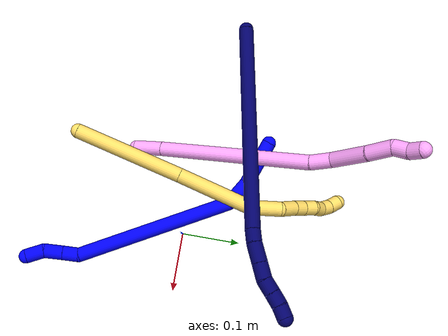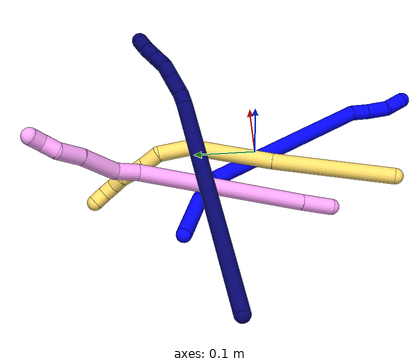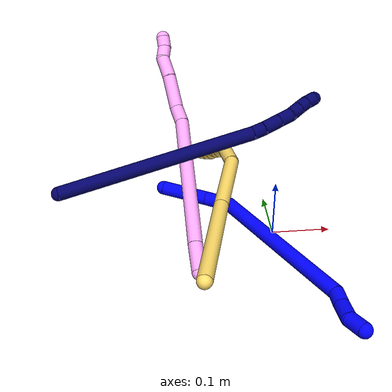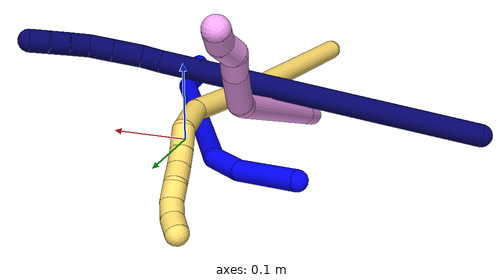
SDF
<sdf version="1.7">
 <world name="default">
  <model name="1">
   <static>0</static>
   <link name="1">
    <collision name="collision-cylinder-e_1_1_4">
     <pose>-0.023151 -0.032304 0.009598 1.28199 -0.601932 -0.455141</pose>
     <geometry><cylinder><radius>0.0125</radius><length>0.08177</length></cylinder></geometry>
     <surface>
      <friction><ode><mu>1.16</mu><mu2>1.16</mu2><slip1>0</slip1><slip2>0</slip2></ode></friction>
      <contact><ode><kp>1e+06</kp><kd>1</kd><max_vel>0</max_vel><min_depth>0.001</min_depth></ode></contact>
     </surface>
    </collision>
    <visual name="visual-cylinder-e_1_1_4">
     <pose>-0.023151 -0.032304 0.009598 1.28199 -0.601932 -0.455141</pose>
     <geometry><cylinder><radius>0.0125</radius><length>0.08177</length></cylinder></geometry>
     <material><ambient>0 0 1 1</ambient></material>
    </visual>
    <collision name="collision-cylinder-e_2_4_5">
     <pose>-0.054842 -0.085975 0.023055 1.3921 -0.374749 -0.314231</pose>
     <geometry><cylinder><radius>0.0125</radius><length>0.046667</length></cylinder></geometry>
     <surface>
      <friction><ode><mu>1.16</mu><mu2>1.16</mu2><slip1>0</slip1><slip2>0</slip2></ode></friction>
      <contact><ode><kp>1e+06</kp><kd>1</kd><max_vel>0</max_vel><min_depth>0.001</min_depth></ode></contact>
     </surface>
    </collision>
    <visual name="visual-cylinder-e_2_4_5">
     <pose>-0.054842 -0.085975 0.023055 1.3921 -0.374749 -0.314231</pose>
     <geometry><cylinder><radius>0.0125</radius><length>0.046667</length></cylinder></geometry>
     <material><ambient>0 0 1 1</ambient></material>
    </visual>
    <collision name="collision-cylinder-e_3_5_6">
     <pose>-0.045287 -0.239347 0.068467 1.26584 0.130026 0.095449</pose>
     <geometry><cylinder><radius>0.0125</radius><length>0.279134</length></cylinder></geometry>
     <surface>
      <friction><ode><mu>1.16</mu><mu2>1.16</mu2><slip1>0</slip1><slip2>0</slip2></ode></friction>
      <contact><ode><kp>1e+06</kp><kd>1</kd><max_vel>0</max_vel><min_depth>0.001</min_depth></ode></contact>
     </surface>
    </collision>
    <visual name="visual-cylinder-e_3_5_6">
     <pose>-0.045287 -0.239347 0.068467 1.26584 0.130026 0.095449</pose>
     <geometry><cylinder><radius>0.0125</radius><length>0.279134</length></cylinder></geometry>
     <material><ambient>0 0 1 1</ambient></material>
    </visual>
    <collision name="collision-cylinder-e_4_6_7">
     <pose>-0.019463 -0.382141 0.114496 1.17749 0.584415 0.396462</pose>
     <geometry><cylinder><radius>0.0125</radius><length>0.028013</length></cylinder></geometry>
     <surface>
      <friction><ode><mu>1.16</mu><mu2>1.16</mu2><slip1>0</slip1><slip2>0</slip2></ode></friction>
      <contact><ode><kp>1e+06</kp><kd>1</kd><max_vel>0</max_vel><min_depth>0.001</min_depth></ode></contact>
     </surface>
    </collision>
    <visual name="visual-cylinder-e_4_6_7">
     <pose>-0.019463 -0.382141 0.114496 1.17749 0.584415 0.396462</pose>
     <geometry><cylinder><radius>0.0125</radius><length>0.028013</length></cylinder></geometry>
     <material><ambient>0 0 1 1</ambient></material>
    </visual>
    <collision name="collision-cylinder-e_5_7_8">
     <pose>-0.002573 -0.406046 0.122615 1.29996 0.592479 0.455975</pose>
     <geometry><cylinder><radius>0.0125</radius><length>0.032815</length></cylinder></geometry>
     <surface>
      <friction><ode><mu>1.16</mu><mu2>1.16</mu2><slip1>0</slip1><slip2>0</slip2></ode></friction>
      <contact><ode><kp>1e+06</kp><kd>1</kd><max_vel>0</max_vel><min_depth>0.001</min_depth></ode></contact>
     </surface>
    </collision>
    <visual name="visual-cylinder-e_5_7_8">
     <pose>-0.002573 -0.406046 0.122615 1.29996 0.592479 0.455975</pose>
     <geometry><cylinder><radius>0.0125</radius><length>0.032815</length></cylinder></geometry>
     <material><ambient>0 0 1 1</ambient></material>
    </visual>
    <collision name="collision-cylinder-e_6_8_2">
     <pose>0.00938 -0.434434 0.129185 1.38135 0.177514 0.146833</pose>
     <geometry><cylinder><radius>0.0125</radius><length>0.0316</length></cylinder></geometry>
     <surface>
      <friction><ode><mu>1.16</mu><mu2>1.16</mu2><slip1>0</slip1><slip2>0</slip2></ode></friction>
      <contact><ode><kp>1e+06</kp><kd>1</kd><max_vel>0</max_vel><min_depth>0.001</min_depth></ode></contact>
     </surface>
    </collision>
    <visual name="visual-cylinder-e_6_8_2">
     <pose>0.00938 -0.434434 0.129185 1.38135 0.177514 0.146833</pose>
     <geometry><cylinder><radius>0.0125</radius><length>0.0316</length></cylinder></geometry>
     <material><ambient>0 0 1 1</ambient></material>
    </visual>
    <collision name="collision-sphere-2">
     <pose>0.01217 -0.449708 0.132113 0 -0 0</pose>
     <geometry><sphere><radius>0.0125</radius></sphere></geometry>
     <surface>
      <friction><ode><mu>1.16</mu><mu2>1.16</mu2><slip1>0</slip1><slip2>0</slip2></ode></friction>
      <contact><ode><kp>1e+06</kp><kd>1</kd><max_vel>0</max_vel><min_depth>0.001</min_depth></ode></contact>
     </surface>
    </collision>
    <visual name="visual-sphere-2">
     <pose>0.01217 -0.449708 0.132113 0 -0 0</pose>
     <geometry><sphere><radius>0.0125</radius></sphere></geometry>
     <material><ambient>0 0 1 1</ambient></material>
    </visual>
    <collision name="collision-sphere-4">
     <pose>-0.046301 -0.064607 0.019196 0 -0 0</pose>
     <geometry><sphere><radius>0.0125</radius></sphere></geometry>
     <surface>
      <friction><ode><mu>1.16</mu><mu2>1.16</mu2><slip1>0</slip1><slip2>0</slip2></ode></friction>
      <contact><ode><kp>1e+06</kp><kd>1</kd><max_vel>0</max_vel><min_depth>0.001</min_depth></ode></contact>
     </surface>
    </collision>
    <visual name="visual-sphere-4">
     <pose>-0.046301 -0.064607 0.019196 0 -0 0</pose>
     <geometry><sphere><radius>0.0125</radius></sphere></geometry>
     <material><ambient>0 0 1 1</ambient></material>
    </visual>
    <collision name="collision-sphere-1">
     <geometry><sphere><radius>0.0125</radius></sphere></geometry>
     <surface>
      <friction><ode><mu>1.16</mu><mu2>1.16</mu2><slip1>0</slip1><slip2>0</slip2></ode></friction>
      <contact><ode><kp>1e+06</kp><kd>1</kd><max_vel>0</max_vel><min_depth>0.001</min_depth></ode></contact>
     </surface>
    </collision>
    <visual name="visual-sphere-1">
     <geometry><sphere><radius>0.0125</radius></sphere></geometry>
     <material><ambient>0 0 1 1</ambient></material>
    </visual>
    <collision name="collision-sphere-8">
     <pose>0.00659 -0.419161 0.126256 0 -0 0</pose>
     <geometry><sphere><radius>0.0125</radius></sphere></geometry>
     <surface>
      <friction><ode><mu>1.16</mu><mu2>1.16</mu2><slip1>0</slip1><slip2>0</slip2></ode></friction>
      <contact><ode><kp>1e+06</kp><kd>1</kd><max_vel>0</max_vel><min_depth>0.001</min_depth></ode></contact>
     </surface>
    </collision>
    <visual name="visual-sphere-8">
     <pose>0.00659 -0.419161 0.126256 0 -0 0</pose>
     <geometry><sphere><radius>0.0125</radius></sphere></geometry>
     <material><ambient>0 0 1 1</ambient></material>
    </visual>
    <collision name="collision-sphere-5">
     <pose>-0.063383 -0.107344 0.026915 0 -0 0</pose>
     <geometry><sphere><radius>0.0125</radius></sphere></geometry>
     <surface>
      <friction><ode><mu>1.16</mu><mu2>1.16</mu2><slip1>0</slip1><slip2>0</slip2></ode></friction>
      <contact><ode><kp>1e+06</kp><kd>1</kd><max_vel>0</max_vel><min_depth>0.001</min_depth></ode></contact>
     </surface>
    </collision>
    <visual name="visual-sphere-5">
     <pose>-0.063383 -0.107344 0.026915 0 -0 0</pose>
     <geometry><sphere><radius>0.0125</radius></sphere></geometry>
     <material><ambient>0 0 1 1</ambient></material>
    </visual>
    <collision name="collision-sphere-6">
     <pose>-0.02719 -0.371351 0.110019 0 -0 0</pose>
     <geometry><sphere><radius>0.0125</radius></sphere></geometry>
     <surface>
      <friction><ode><mu>1.16</mu><mu2>1.16</mu2><slip1>0</slip1><slip2>0</slip2></ode></friction>
      <contact><ode><kp>1e+06</kp><kd>1</kd><max_vel>0</max_vel><min_depth>0.001</min_depth></ode></contact>
     </surface>
    </collision>
    <visual name="visual-sphere-6">
     <pose>-0.02719 -0.371351 0.110019 0 -0 0</pose>
     <geometry><sphere><radius>0.0125</radius></sphere></geometry>
     <material><ambient>0 0 1 1</ambient></material>
    </visual>
    <collision name="collision-sphere-7">
     <pose>-0.011735 -0.392931 0.118973 0 -0 0</pose>
     <geometry><sphere><radius>0.0125</radius></sphere></geometry>
     <surface>
      <friction><ode><mu>1.16</mu><mu2>1.16</mu2><slip1>0</slip1><slip2>0</slip2></ode></friction>
      <contact><ode><kp>1e+06</kp><kd>1</kd><max_vel>0</max_vel><min_depth>0.001</min_depth></ode></contact>
     </surface>
    </collision>
    <visual name="visual-sphere-7">
     <pose>-0.011735 -0.392931 0.118973 0 -0 0</pose>
     <geometry><sphere><radius>0.0125</radius></sphere></geometry>
     <material><ambient>0 0 1 1</ambient></material>
    </visual>
    <inertial>
     <pose>-0.034853 -0.222443 0.064571 0 -0 0</pose>
     <mass>0.5</mass>
     <inertia>
      <ixx>0.00201</ixx>
      <ixy>0</ixy>
      <ixz>0</ixz>
      <iyy>0.000717</iyy>
      <iyz>0</iyz>
      <izz>0.001582</izz>
     </inertia>
    </inertial>
   </link>
   <pose>-0.183529 0.123647 0.021272 -2.86568 -0.191392 -2.50326</pose>
  </model>
  <model name="4">
   <static>0</static>
   <link name="4">
    <collision name="collision-cylinder-e_1_1_4">
     <pose>-0.002924 0.020823 0.015271 -0.938043 -0.112749 0.057179</pose>
     <geometry><cylinder><radius>0.0125</radius><length>0.051975</length></cylinder></geometry>
     <surface>
      <friction><ode><mu>1.16</mu><mu2>1.16</mu2><slip1>0</slip1><slip2>0</slip2></ode></friction>
      <contact><ode><kp>1e+06</kp><kd>1</kd><max_vel>0</max_vel><min_depth>0.001</min_depth></ode></contact>
     </surface>
    </collision>
    <visual name="visual-cylinder-e_1_1_4">
     <pose>-0.002924 0.020823 0.015271 -0.938043 -0.112749 0.057179</pose>
     <geometry><cylinder><radius>0.0125</radius><length>0.051975</length></cylinder></geometry>
     <material><ambient>1 0.65098 0.996078 1</ambient></material>
    </visual>
    <collision name="collision-cylinder-e_2_4_5">
     <pose>-0.02252 0.149206 0.104498 -0.968447 -0.127035 0.066884</pose>
     <geometry><cylinder><radius>0.0125</radius><length>0.263186</length></cylinder></geometry>
     <surface>
      <friction><ode><mu>1.16</mu><mu2>1.16</mu2><slip1>0</slip1><slip2>0</slip2></ode></friction>
      <contact><ode><kp>1e+06</kp><kd>1</kd><max_vel>0</max_vel><min_depth>0.001</min_depth></ode></contact>
     </surface>
    </collision>
    <visual name="visual-cylinder-e_2_4_5">
     <pose>-0.02252 0.149206 0.104498 -0.968447 -0.127035 0.066884</pose>
     <geometry><cylinder><radius>0.0125</radius><length>0.263186</length></cylinder></geometry>
     <material><ambient>1 0.65098 0.996078 1</ambient></material>
    </visual>
    <collision name="collision-cylinder-e_3_5_6">
     <pose>-0.039314 0.269342 0.190864 -0.792088 -0.00691 0.00289</pose>
     <geometry><cylinder><radius>0.0125</radius><length>0.035334</length></cylinder></geometry>
     <surface>
      <friction><ode><mu>1.16</mu><mu2>1.16</mu2><slip1>0</slip1><slip2>0</slip2></ode></friction>
      <contact><ode><kp>1e+06</kp><kd>1</kd><max_vel>0</max_vel><min_depth>0.001</min_depth></ode></contact>
     </surface>
    </collision>
    <visual name="visual-cylinder-e_3_5_6">
     <pose>-0.039314 0.269342 0.190864 -0.792088 -0.00691 0.00289</pose>
     <geometry><cylinder><radius>0.0125</radius><length>0.035334</length></cylinder></geometry>
     <material><ambient>1 0.65098 0.996078 1</ambient></material>
    </visual>
    <collision name="collision-cylinder-e_4_6_7">
     <pose>-0.028675 0.306953 0.219709 -0.989851 0.344946 -0.187496</pose>
     <geometry><cylinder><radius>0.0125</radius><length>0.063648</length></cylinder></geometry>
     <surface>
      <friction><ode><mu>1.16</mu><mu2>1.16</mu2><slip1>0</slip1><slip2>0</slip2></ode></friction>
      <contact><ode><kp>1e+06</kp><kd>1</kd><max_vel>0</max_vel><min_depth>0.001</min_depth></ode></contact>
     </surface>
    </collision>
    <visual name="visual-cylinder-e_4_6_7">
     <pose>-0.028675 0.306953 0.219709 -0.989851 0.344946 -0.187496</pose>
     <geometry><cylinder><radius>0.0125</radius><length>0.063648</length></cylinder></geometry>
     <material><ambient>1 0.65098 0.996078 1</ambient></material>
    </visual>
    <collision name="collision-cylinder-e_5_7_8">
     <pose>-0.01258 0.346917 0.248784 -0.868268 0.266212 -0.124</pose>
     <geometry><cylinder><radius>0.0125</radius><length>0.040547</length></cylinder></geometry>
     <surface>
      <friction><ode><mu>1.16</mu><mu2>1.16</mu2><slip1>0</slip1><slip2>0</slip2></ode></friction>
      <contact><ode><kp>1e+06</kp><kd>1</kd><max_vel>0</max_vel><min_depth>0.001</min_depth></ode></contact>
     </surface>
    </collision>
    <visual name="visual-cylinder-e_5_7_8">
     <pose>-0.01258 0.346917 0.248784 -0.868268 0.266212 -0.124</pose>
     <geometry><cylinder><radius>0.0125</radius><length>0.040547</length></cylinder></geometry>
     <material><ambient>1 0.65098 0.996078 1</ambient></material>
    </visual>
    <collision name="collision-cylinder-e_6_8_9">
     <pose>-0.00718 0.373377 0.265281 -1.24784 0.005486 -0.003949</pose>
     <geometry><cylinder><radius>0.0125</radius><length>0.024322</length></cylinder></geometry>
     <surface>
      <friction><ode><mu>1.16</mu><mu2>1.16</mu2><slip1>0</slip1><slip2>0</slip2></ode></friction>
      <contact><ode><kp>1e+06</kp><kd>1</kd><max_vel>0</max_vel><min_depth>0.001</min_depth></ode></contact>
     </surface>
    </collision>
    <visual name="visual-cylinder-e_6_8_9">
     <pose>-0.00718 0.373377 0.265281 -1.24784 0.005486 -0.003949</pose>
     <geometry><cylinder><radius>0.0125</radius><length>0.024322</length></cylinder></geometry>
     <material><ambient>1 0.65098 0.996078 1</ambient></material>
    </visual>
    <collision name="collision-cylinder-e_7_9_2">
     <pose>-0.003636 0.393585 0.273912 -1.06801 0.337679 -0.200915</pose>
     <geometry><cylinder><radius>0.0125</radius><length>0.020988</length></cylinder></geometry>
     <surface>
      <friction><ode><mu>1.16</mu><mu2>1.16</mu2><slip1>0</slip1><slip2>0</slip2></ode></friction>
      <contact><ode><kp>1e+06</kp><kd>1</kd><max_vel>0</max_vel><min_depth>0.001</min_depth></ode></contact>
     </surface>
    </collision>
    <visual name="visual-cylinder-e_7_9_2">
     <pose>-0.003636 0.393585 0.273912 -1.06801 0.337679 -0.200915</pose>
     <geometry><cylinder><radius>0.0125</radius><length>0.020988</length></cylinder></geometry>
     <material><ambient>1 0.65098 0.996078 1</ambient></material>
    </visual>
    <collision name="collision-sphere-2">
     <pose>-0.00016 0.402261 0.278683 0 -0 0</pose>
     <geometry><sphere><radius>0.0125</radius></sphere></geometry>
     <surface>
      <friction><ode><mu>1.16</mu><mu2>1.16</mu2><slip1>0</slip1><slip2>0</slip2></ode></friction>
      <contact><ode><kp>1e+06</kp><kd>1</kd><max_vel>0</max_vel><min_depth>0.001</min_depth></ode></contact>
     </surface>
    </collision>
    <visual name="visual-sphere-2">
     <pose>-0.00016 0.402261 0.278683 0 -0 0</pose>
     <geometry><sphere><radius>0.0125</radius></sphere></geometry>
     <material><ambient>1 0.65098 0.996078 1</ambient></material>
    </visual>
    <collision name="collision-sphere-9">
     <pose>-0.007113 0.384909 0.269141 0 -0 0</pose>
     <geometry><sphere><radius>0.0125</radius></sphere></geometry>
     <surface>
      <friction><ode><mu>1.16</mu><mu2>1.16</mu2><slip1>0</slip1><slip2>0</slip2></ode></friction>
      <contact><ode><kp>1e+06</kp><kd>1</kd><max_vel>0</max_vel><min_depth>0.001</min_depth></ode></contact>
     </surface>
    </collision>
    <visual name="visual-sphere-9">
     <pose>-0.007113 0.384909 0.269141 0 -0 0</pose>
     <geometry><sphere><radius>0.0125</radius></sphere></geometry>
     <material><ambient>1 0.65098 0.996078 1</ambient></material>
    </visual>
    <collision name="collision-sphere-4">
     <pose>-0.005848 0.041647 0.030541 0 -0 0</pose>
     <geometry><sphere><radius>0.0125</radius></sphere></geometry>
     <surface>
      <friction><ode><mu>1.16</mu><mu2>1.16</mu2><slip1>0</slip1><slip2>0</slip2></ode></friction>
      <contact><ode><kp>1e+06</kp><kd>1</kd><max_vel>0</max_vel><min_depth>0.001</min_depth></ode></contact>
     </surface>
    </collision>
    <visual name="visual-sphere-4">
     <pose>-0.005848 0.041647 0.030541 0 -0 0</pose>
     <geometry><sphere><radius>0.0125</radius></sphere></geometry>
     <material><ambient>1 0.65098 0.996078 1</ambient></material>
    </visual>
    <collision name="collision-sphere-1">
     <geometry><sphere><radius>0.0125</radius></sphere></geometry>
     <surface>
      <friction><ode><mu>1.16</mu><mu2>1.16</mu2><slip1>0</slip1><slip2>0</slip2></ode></friction>
      <contact><ode><kp>1e+06</kp><kd>1</kd><max_vel>0</max_vel><min_depth>0.001</min_depth></ode></contact>
     </surface>
    </collision>
    <visual name="visual-sphere-1">
     <geometry><sphere><radius>0.0125</radius></sphere></geometry>
     <material><ambient>1 0.65098 0.996078 1</ambient></material>
    </visual>
    <collision name="collision-sphere-8">
     <pose>-0.007247 0.361845 0.261422 0 -0 0</pose>
     <geometry><sphere><radius>0.0125</radius></sphere></geometry>
     <surface>
      <friction><ode><mu>1.16</mu><mu2>1.16</mu2><slip1>0</slip1><slip2>0</slip2></ode></friction>
      <contact><ode><kp>1e+06</kp><kd>1</kd><max_vel>0</max_vel><min_depth>0.001</min_depth></ode></contact>
     </surface>
    </collision>
    <visual name="visual-sphere-8">
     <pose>-0.007247 0.361845 0.261422 0 -0 0</pose>
     <geometry><sphere><radius>0.0125</radius></sphere></geometry>
     <material><ambient>1 0.65098 0.996078 1</ambient></material>
    </visual>
    <collision name="collision-sphere-5">
     <pose>-0.039192 0.256766 0.178455 0 -0 0</pose>
     <geometry><sphere><radius>0.0125</radius></sphere></geometry>
     <surface>
      <friction><ode><mu>1.16</mu><mu2>1.16</mu2><slip1>0</slip1><slip2>0</slip2></ode></friction>
      <contact><ode><kp>1e+06</kp><kd>1</kd><max_vel>0</max_vel><min_depth>0.001</min_depth></ode></contact>
     </surface>
    </collision>
    <visual name="visual-sphere-5">
     <pose>-0.039192 0.256766 0.178455 0 -0 0</pose>
     <geometry><sphere><radius>0.0125</radius></sphere></geometry>
     <material><ambient>1 0.65098 0.996078 1</ambient></material>
    </visual>
    <collision name="collision-sphere-6">
     <pose>-0.039436 0.281917 0.203272 0 -0 0</pose>
     <geometry><sphere><radius>0.0125</radius></sphere></geometry>
     <surface>
      <friction><ode><mu>1.16</mu><mu2>1.16</mu2><slip1>0</slip1><slip2>0</slip2></ode></friction>
      <contact><ode><kp>1e+06</kp><kd>1</kd><max_vel>0</max_vel><min_depth>0.001</min_depth></ode></contact>
     </surface>
    </collision>
    <visual name="visual-sphere-6">
     <pose>-0.039436 0.281917 0.203272 0 -0 0</pose>
     <geometry><sphere><radius>0.0125</radius></sphere></geometry>
     <material><ambient>1 0.65098 0.996078 1</ambient></material>
    </visual>
    <collision name="collision-sphere-7">
     <pose>-0.017913 0.33199 0.236146 0 -0 0</pose>
     <geometry><sphere><radius>0.0125</radius></sphere></geometry>
     <surface>
      <friction><ode><mu>1.16</mu><mu2>1.16</mu2><slip1>0</slip1><slip2>0</slip2></ode></friction>
      <contact><ode><kp>1e+06</kp><kd>1</kd><max_vel>0</max_vel><min_depth>0.001</min_depth></ode></contact>
     </surface>
    </collision>
    <visual name="visual-sphere-7">
     <pose>-0.017913 0.33199 0.236146 0 -0 0</pose>
     <geometry><sphere><radius>0.0125</radius></sphere></geometry>
     <material><ambient>1 0.65098 0.996078 1</ambient></material>
    </visual>
    <inertial>
     <pose>-0.020108 0.201627 0.142625 0 -0 0</pose>
     <mass>0.5</mass>
     <inertia>
      <ixx>0.001662</ixx>
      <ixy>0</ixy>
      <ixz>0</ixz>
      <iyy>0.001036</iyy>
      <iyz>0</iyz>
      <izz>-0.001086</izz>
     </inertia>
    </inertial>
   </link>
   <pose>-0.137239 -0.10842 0.011491 1.63393 -0.941879 -2.26807</pose>
  </model>
  <model name="5">
   <static>0</static>
   <link name="5">
    <collision name="collision-cylinder-e_1_1_4">
     <pose>0.00494 0.00085 -0.094147 -3.13257 0.052423 -2.80058</pose>
     <geometry><cylinder><radius>0.0125</radius><length>0.18856</length></cylinder></geometry>
     <surface>
      <friction><ode><mu>1.16</mu><mu2>1.16</mu2><slip1>0</slip1><slip2>0</slip2></ode></friction>
      <contact><ode><kp>1e+06</kp><kd>1</kd><max_vel>0</max_vel><min_depth>0.001</min_depth></ode></contact>
     </surface>
    </collision>
    <visual name="visual-cylinder-e_1_1_4">
     <pose>0.00494 0.00085 -0.094147 -3.13257 0.052423 -2.80058</pose>
     <geometry><cylinder><radius>0.0125</radius><length>0.18856</length></cylinder></geometry>
     <material><ambient>1 0.858824 0.4 1</ambient></material>
    </visual>
    <collision name="collision-cylinder-e_2_4_5">
     <pose>0.015377 -0.000382 -0.252622 3.10923 0.085201 2.41599</pose>
     <geometry><cylinder><radius>0.0125</radius><length>0.129194</length></cylinder></geometry>
     <surface>
      <friction><ode><mu>1.16</mu><mu2>1.16</mu2><slip1>0</slip1><slip2>0</slip2></ode></friction>
      <contact><ode><kp>1e+06</kp><kd>1</kd><max_vel>0</max_vel><min_depth>0.001</min_depth></ode></contact>
     </surface>
    </collision>
    <visual name="visual-cylinder-e_2_4_5">
     <pose>0.015377 -0.000382 -0.252622 3.10923 0.085201 2.41599</pose>
     <geometry><cylinder><radius>0.0125</radius><length>0.129194</length></cylinder></geometry>
     <material><ambient>1 0.858824 0.4 1</ambient></material>
    </visual>
    <collision name="collision-cylinder-e_3_5_6">
     <pose>0.024867 0.006701 -0.340503 -2.77046 0.156667 -0.792081</pose>
     <geometry><cylinder><radius>0.0125</radius><length>0.051172</length></cylinder></geometry>
     <surface>
      <friction><ode><mu>1.16</mu><mu2>1.16</mu2><slip1>0</slip1><slip2>0</slip2></ode></friction>
      <contact><ode><kp>1e+06</kp><kd>1</kd><max_vel>0</max_vel><min_depth>0.001</min_depth></ode></contact>
     </surface>
    </collision>
    <visual name="visual-cylinder-e_3_5_6">
     <pose>0.024867 0.006701 -0.340503 -2.77046 0.156667 -0.792081</pose>
     <geometry><cylinder><radius>0.0125</radius><length>0.051172</length></cylinder></geometry>
     <material><ambient>1 0.858824 0.4 1</ambient></material>
    </visual>
    <collision name="collision-cylinder-e_4_6_7">
     <pose>0.025605 0.024883 -0.374359 -2.42273 -0.233269 0.604521</pose>
     <geometry><cylinder><radius>0.0125</radius><length>0.028147</length></cylinder></geometry>
     <surface>
      <friction><ode><mu>1.16</mu><mu2>1.16</mu2><slip1>0</slip1><slip2>0</slip2></ode></friction>
      <contact><ode><kp>1e+06</kp><kd>1</kd><max_vel>0</max_vel><min_depth>0.001</min_depth></ode></contact>
     </surface>
    </collision>
    <visual name="visual-cylinder-e_4_6_7">
     <pose>0.025605 0.024883 -0.374359 -2.42273 -0.233269 0.604521</pose>
     <geometry><cylinder><radius>0.0125</radius><length>0.028147</length></cylinder></geometry>
     <material><ambient>1 0.858824 0.4 1</ambient></material>
    </visual>
    <collision name="collision-cylinder-e_5_7_8">
     <pose>0.019867 0.040252 -0.392788 -2.47801 -0.236456 0.664014</pose>
     <geometry><cylinder><radius>0.0125</radius><length>0.021216</length></cylinder></geometry>
     <surface>
      <friction><ode><mu>1.16</mu><mu2>1.16</mu2><slip1>0</slip1><slip2>0</slip2></ode></friction>
      <contact><ode><kp>1e+06</kp><kd>1</kd><max_vel>0</max_vel><min_depth>0.001</min_depth></ode></contact>
     </surface>
    </collision>
    <visual name="visual-cylinder-e_5_7_8">
     <pose>0.019867 0.040252 -0.392788 -2.47801 -0.236456 0.664014</pose>
     <geometry><cylinder><radius>0.0125</radius><length>0.021216</length></cylinder></geometry>
     <material><ambient>1 0.858824 0.4 1</ambient></material>
    </visual>
    <collision name="collision-cylinder-e_6_8_9">
     <pose>0.0162 0.052648 -0.409737 -2.54107 -0.110078 0.3522</pose>
     <geometry><cylinder><radius>0.0125</radius><length>0.021523</length></cylinder></geometry>
     <surface>
      <friction><ode><mu>1.16</mu><mu2>1.16</mu2><slip1>0</slip1><slip2>0</slip2></ode></friction>
      <contact><ode><kp>1e+06</kp><kd>1</kd><max_vel>0</max_vel><min_depth>0.001</min_depth></ode></contact>
     </surface>
    </collision>
    <visual name="visual-cylinder-e_6_8_9">
     <pose>0.0162 0.052648 -0.409737 -2.54107 -0.110078 0.3522</pose>
     <geometry><cylinder><radius>0.0125</radius><length>0.021523</length></cylinder></geometry>
     <material><ambient>1 0.858824 0.4 1</ambient></material>
    </visual>
    <collision name="collision-cylinder-e_7_9_10">
     <pose>0.01018 0.064397 -0.425284 -2.43789 -0.501848 1.21902</pose>
     <geometry><cylinder><radius>0.0125</radius><length>0.020113</length></cylinder></geometry>
     <surface>
      <friction><ode><mu>1.16</mu><mu2>1.16</mu2><slip1>0</slip1><slip2>0</slip2></ode></friction>
      <contact><ode><kp>1e+06</kp><kd>1</kd><max_vel>0</max_vel><min_depth>0.001</min_depth></ode></contact>
     </surface>
    </collision>
    <visual name="visual-cylinder-e_7_9_10">
     <pose>0.01018 0.064397 -0.425284 -2.43789 -0.501848 1.21902</pose>
     <geometry><cylinder><radius>0.0125</radius><length>0.020113</length></cylinder></geometry>
     <material><ambient>1 0.858824 0.4 1</ambient></material>
    </visual>
    <collision name="collision-cylinder-e_8_10_11">
     <pose>0.004052 0.077317 -0.438835 -2.32867 -0.129243 0.298448</pose>
     <geometry><cylinder><radius>0.0125</radius><length>0.020035</length></cylinder></geometry>
     <surface>
      <friction><ode><mu>1.16</mu><mu2>1.16</mu2><slip1>0</slip1><slip2>0</slip2></ode></friction>
      <contact><ode><kp>1e+06</kp><kd>1</kd><max_vel>0</max_vel><min_depth>0.001</min_depth></ode></contact>
     </surface>
    </collision>
    <visual name="visual-cylinder-e_8_10_11">
     <pose>0.004052 0.077317 -0.438835 -2.32867 -0.129243 0.298448</pose>
     <geometry><cylinder><radius>0.0125</radius><length>0.020035</length></cylinder></geometry>
     <material><ambient>1 0.858824 0.4 1</ambient></material>
    </visual>
    <collision name="collision-cylinder-e_9_11_2">
     <pose>0.003755 0.09254 -0.451603 -2.20905 0.09937 -0.196966</pose>
     <geometry><cylinder><radius>0.0125</radius><length>0.020041</length></cylinder></geometry>
     <surface>
      <friction><ode><mu>1.16</mu><mu2>1.16</mu2><slip1>0</slip1><slip2>0</slip2></ode></friction>
      <contact><ode><kp>1e+06</kp><kd>1</kd><max_vel>0</max_vel><min_depth>0.001</min_depth></ode></contact>
     </surface>
    </collision>
    <visual name="visual-cylinder-e_9_11_2">
     <pose>0.003755 0.09254 -0.451603 -2.20905 0.09937 -0.196966</pose>
     <geometry><cylinder><radius>0.0125</radius><length>0.020041</length></cylinder></geometry>
     <material><ambient>1 0.858824 0.4 1</ambient></material>
    </visual>
    <collision name="collision-sphere-2">
     <pose>0.004749 0.100548 -0.457544 0 -0 0</pose>
     <geometry><sphere><radius>0.0125</radius></sphere></geometry>
     <surface>
      <friction><ode><mu>1.16</mu><mu2>1.16</mu2><slip1>0</slip1><slip2>0</slip2></ode></friction>
      <contact><ode><kp>1e+06</kp><kd>1</kd><max_vel>0</max_vel><min_depth>0.001</min_depth></ode></contact>
     </surface>
    </collision>
    <visual name="visual-sphere-2">
     <pose>0.004749 0.100548 -0.457544 0 -0 0</pose>
     <geometry><sphere><radius>0.0125</radius></sphere></geometry>
     <material><ambient>1 0.858824 0.4 1</ambient></material>
    </visual>
    <collision name="collision-sphere-11">
     <pose>0.002761 0.084532 -0.445663 0 -0 0</pose>
     <geometry><sphere><radius>0.0125</radius></sphere></geometry>
     <surface>
      <friction><ode><mu>1.16</mu><mu2>1.16</mu2><slip1>0</slip1><slip2>0</slip2></ode></friction>
      <contact><ode><kp>1e+06</kp><kd>1</kd><max_vel>0</max_vel><min_depth>0.001</min_depth></ode></contact>
     </surface>
    </collision>
    <visual name="visual-sphere-11">
     <pose>0.002761 0.084532 -0.445663 0 -0 0</pose>
     <geometry><sphere><radius>0.0125</radius></sphere></geometry>
     <material><ambient>1 0.858824 0.4 1</ambient></material>
    </visual>
    <collision name="collision-sphere-10">
     <pose>0.005343 0.070102 -0.432006 0 -0 0</pose>
     <geometry><sphere><radius>0.0125</radius></sphere></geometry>
     <surface>
      <friction><ode><mu>1.16</mu><mu2>1.16</mu2><slip1>0</slip1><slip2>0</slip2></ode></friction>
      <contact><ode><kp>1e+06</kp><kd>1</kd><max_vel>0</max_vel><min_depth>0.001</min_depth></ode></contact>
     </surface>
    </collision>
    <visual name="visual-sphere-10">
     <pose>0.005343 0.070102 -0.432006 0 -0 0</pose>
     <geometry><sphere><radius>0.0125</radius></sphere></geometry>
     <material><ambient>1 0.858824 0.4 1</ambient></material>
    </visual>
    <collision name="collision-sphere-9">
     <pose>0.015018 0.058693 -0.418562 0 -0 0</pose>
     <geometry><sphere><radius>0.0125</radius></sphere></geometry>
     <surface>
      <friction><ode><mu>1.16</mu><mu2>1.16</mu2><slip1>0</slip1><slip2>0</slip2></ode></friction>
      <contact><ode><kp>1e+06</kp><kd>1</kd><max_vel>0</max_vel><min_depth>0.001</min_depth></ode></contact>
     </surface>
    </collision>
    <visual name="visual-sphere-9">
     <pose>0.015018 0.058693 -0.418562 0 -0 0</pose>
     <geometry><sphere><radius>0.0125</radius></sphere></geometry>
     <material><ambient>1 0.858824 0.4 1</ambient></material>
    </visual>
    <collision name="collision-sphere-4">
     <pose>0.00988 0.0017 -0.188293 0 -0 0</pose>
     <geometry><sphere><radius>0.0125</radius></sphere></geometry>
     <surface>
      <friction><ode><mu>1.16</mu><mu2>1.16</mu2><slip1>0</slip1><slip2>0</slip2></ode></friction>
      <contact><ode><kp>1e+06</kp><kd>1</kd><max_vel>0</max_vel><min_depth>0.001</min_depth></ode></contact>
     </surface>
    </collision>
    <visual name="visual-sphere-4">
     <pose>0.00988 0.0017 -0.188293 0 -0 0</pose>
     <geometry><sphere><radius>0.0125</radius></sphere></geometry>
     <material><ambient>1 0.858824 0.4 1</ambient></material>
    </visual>
    <collision name="collision-sphere-1">
     <geometry><sphere><radius>0.0125</radius></sphere></geometry>
     <surface>
      <friction><ode><mu>1.16</mu><mu2>1.16</mu2><slip1>0</slip1><slip2>0</slip2></ode></friction>
      <contact><ode><kp>1e+06</kp><kd>1</kd><max_vel>0</max_vel><min_depth>0.001</min_depth></ode></contact>
     </surface>
    </collision>
    <visual name="visual-sphere-1">
     <geometry><sphere><radius>0.0125</radius></sphere></geometry>
     <material><ambient>1 0.858824 0.4 1</ambient></material>
    </visual>
    <collision name="collision-sphere-8">
     <pose>0.017382 0.046604 -0.400912 0 -0 0</pose>
     <geometry><sphere><radius>0.0125</radius></sphere></geometry>
     <surface>
      <friction><ode><mu>1.16</mu><mu2>1.16</mu2><slip1>0</slip1><slip2>0</slip2></ode></friction>
      <contact><ode><kp>1e+06</kp><kd>1</kd><max_vel>0</max_vel><min_depth>0.001</min_depth></ode></contact>
     </surface>
    </collision>
    <visual name="visual-sphere-8">
     <pose>0.017382 0.046604 -0.400912 0 -0 0</pose>
     <geometry><sphere><radius>0.0125</radius></sphere></geometry>
     <material><ambient>1 0.858824 0.4 1</ambient></material>
    </visual>
    <collision name="collision-sphere-5">
     <pose>0.020874 -0.002465 -0.316951 0 -0 0</pose>
     <geometry><sphere><radius>0.0125</radius></sphere></geometry>
     <surface>
      <friction><ode><mu>1.16</mu><mu2>1.16</mu2><slip1>0</slip1><slip2>0</slip2></ode></friction>
      <contact><ode><kp>1e+06</kp><kd>1</kd><max_vel>0</max_vel><min_depth>0.001</min_depth></ode></contact>
     </surface>
    </collision>
    <visual name="visual-sphere-5">
     <pose>0.020874 -0.002465 -0.316951 0 -0 0</pose>
     <geometry><sphere><radius>0.0125</radius></sphere></geometry>
     <material><ambient>1 0.858824 0.4 1</ambient></material>
    </visual>
    <collision name="collision-sphere-6">
     <pose>0.028859 0.015866 -0.364055 0 -0 0</pose>
     <geometry><sphere><radius>0.0125</radius></sphere></geometry>
     <surface>
      <friction><ode><mu>1.16</mu><mu2>1.16</mu2><slip1>0</slip1><slip2>0</slip2></ode></friction>
      <contact><ode><kp>1e+06</kp><kd>1</kd><max_vel>0</max_vel><min_depth>0.001</min_depth></ode></contact>
     </surface>
    </collision>
    <visual name="visual-sphere-6">
     <pose>0.028859 0.015866 -0.364055 0 -0 0</pose>
     <geometry><sphere><radius>0.0125</radius></sphere></geometry>
     <material><ambient>1 0.858824 0.4 1</ambient></material>
    </visual>
    <collision name="collision-sphere-7">
     <pose>0.022352 0.0339 -0.384663 0 -0 0</pose>
     <geometry><sphere><radius>0.0125</radius></sphere></geometry>
     <surface>
      <friction><ode><mu>1.16</mu><mu2>1.16</mu2><slip1>0</slip1><slip2>0</slip2></ode></friction>
      <contact><ode><kp>1e+06</kp><kd>1</kd><max_vel>0</max_vel><min_depth>0.001</min_depth></ode></contact>
     </surface>
    </collision>
    <visual name="visual-sphere-7">
     <pose>0.022352 0.0339 -0.384663 0 -0 0</pose>
     <geometry><sphere><radius>0.0125</radius></sphere></geometry>
     <material><ambient>1 0.858824 0.4 1</ambient></material>
    </visual>
    <inertial>
     <pose>0.012085 0.01568 -0.243798 0 -0 0</pose>
     <mass>0.5</mass>
     <inertia>
      <ixx>-0.000724</ixx>
      <ixy>0</ixy>
      <ixz>0</ixz>
      <iyy>0.000595</iyy>
      <iyz>0</iyz>
      <izz>-9.2e-05</izz>
     </inertia>
    </inertial>
   </link>
   <pose>-0.138225 -0.201931 0.07677 -1.48368 -1.05207 2.79139</pose>
  </model>
  <model name="7">
   <static>0</static>
   <link name="7">
    <collision name="collision-cylinder-e_1_1_4">
     <pose>0.020382 0.168845 0.053041 -1.26642 0.114662 -0.084209</pose>
     <geometry><cylinder><radius>0.0125</radius><length>0.356301</length></cylinder></geometry>
     <surface>
      <friction><ode><mu>1.16</mu><mu2>1.16</mu2><slip1>0</slip1><slip2>0</slip2></ode></friction>
      <contact><ode><kp>1e+06</kp><kd>1</kd><max_vel>0</max_vel><min_depth>0.001</min_depth></ode></contact>
     </surface>
    </collision>
    <visual name="visual-cylinder-e_1_1_4">
     <pose>0.020382 0.168845 0.053041 -1.26642 0.114662 -0.084209</pose>
     <geometry><cylinder><radius>0.0125</radius><length>0.356301</length></cylinder></geometry>
     <material><ambient>0.003922 0 0.403922 1</ambient></material>
    </visual>
    <collision name="collision-cylinder-e_2_4_5">
     <pose>0.041304 0.347763 0.110142 -1.18764 0.049623 -0.033505</pose>
     <geometry><cylinder><radius>0.0125</radius><length>0.021747</length></cylinder></geometry>
     <surface>
      <friction><ode><mu>1.16</mu><mu2>1.16</mu2><slip1>0</slip1><slip2>0</slip2></ode></friction>
      <contact><ode><kp>1e+06</kp><kd>1</kd><max_vel>0</max_vel><min_depth>0.001</min_depth></ode></contact>
     </surface>
    </collision>
    <visual name="visual-cylinder-e_2_4_5">
     <pose>0.041304 0.347763 0.110142 -1.18764 0.049623 -0.033505</pose>
     <geometry><cylinder><radius>0.0125</radius><length>0.021747</length></cylinder></geometry>
     <material><ambient>0.003922 0 0.403922 1</ambient></material>
    </visual>
    <collision name="collision-cylinder-e_3_5_6">
     <pose>0.040058 0.3729 0.120034 -1.20145 -0.110072 0.075462</pose>
     <geometry><cylinder><radius>0.0125</radius><length>0.032504</length></cylinder></geometry>
     <surface>
      <friction><ode><mu>1.16</mu><mu2>1.16</mu2><slip1>0</slip1><slip2>0</slip2></ode></friction>
      <contact><ode><kp>1e+06</kp><kd>1</kd><max_vel>0</max_vel><min_depth>0.001</min_depth></ode></contact>
     </surface>
    </collision>
    <visual name="visual-cylinder-e_3_5_6">
     <pose>0.040058 0.3729 0.120034 -1.20145 -0.110072 0.075462</pose>
     <geometry><cylinder><radius>0.0125</radius><length>0.032504</length></cylinder></geometry>
     <material><ambient>0.003922 0 0.403922 1</ambient></material>
    </visual>
    <collision name="collision-cylinder-e_4_6_7">
     <pose>0.036901 0.400019 0.130551 -1.20004 -0.105668 0.07233</pose>
     <geometry><cylinder><radius>0.0125</radius><length>0.026011</length></cylinder></geometry>
     <surface>
      <friction><ode><mu>1.16</mu><mu2>1.16</mu2><slip1>0</slip1><slip2>0</slip2></ode></friction>
      <contact><ode><kp>1e+06</kp><kd>1</kd><max_vel>0</max_vel><min_depth>0.001</min_depth></ode></contact>
     </surface>
    </collision>
    <visual name="visual-cylinder-e_4_6_7">
     <pose>0.036901 0.400019 0.130551 -1.20004 -0.105668 0.07233</pose>
     <geometry><cylinder><radius>0.0125</radius><length>0.026011</length></cylinder></geometry>
     <material><ambient>0.003922 0 0.403922 1</ambient></material>
    </visual>
    <collision name="collision-cylinder-e_5_7_8">
     <pose>0.031159 0.42164 0.139205 -1.17769 -0.399254 0.268626</pose>
     <geometry><cylinder><radius>0.0125</radius><length>0.022483</length></cylinder></geometry>
     <surface>
      <friction><ode><mu>1.16</mu><mu2>1.16</mu2><slip1>0</slip1><slip2>0</slip2></ode></friction>
      <contact><ode><kp>1e+06</kp><kd>1</kd><max_vel>0</max_vel><min_depth>0.001</min_depth></ode></contact>
     </surface>
    </collision>
    <visual name="visual-cylinder-e_5_7_8">
     <pose>0.031159 0.42164 0.139205 -1.17769 -0.399254 0.268626</pose>
     <geometry><cylinder><radius>0.0125</radius><length>0.022483</length></cylinder></geometry>
     <material><ambient>0.003922 0 0.403922 1</ambient></material>
    </visual>
    <collision name="collision-cylinder-e_6_8_9">
     <pose>0.022877 0.440213 0.146722 -1.19533 -0.384121 0.263209</pose>
     <geometry><cylinder><radius>0.0125</radius><length>0.020879</length></cylinder></geometry>
     <surface>
      <friction><ode><mu>1.16</mu><mu2>1.16</mu2><slip1>0</slip1><slip2>0</slip2></ode></friction>
      <contact><ode><kp>1e+06</kp><kd>1</kd><max_vel>0</max_vel><min_depth>0.001</min_depth></ode></contact>
     </surface>
    </collision>
    <visual name="visual-cylinder-e_6_8_9">
     <pose>0.022877 0.440213 0.146722 -1.19533 -0.384121 0.263209</pose>
     <geometry><cylinder><radius>0.0125</radius><length>0.020879</length></cylinder></geometry>
     <material><ambient>0.003922 0 0.403922 1</ambient></material>
    </visual>
    <collision name="collision-cylinder-e_7_9_2">
     <pose>0.016515 0.458495 0.153215 -1.26348 -0.246588 0.180875</pose>
     <geometry><cylinder><radius>0.0125</radius><length>0.020075</length></cylinder></geometry>
     <surface>
      <friction><ode><mu>1.16</mu><mu2>1.16</mu2><slip1>0</slip1><slip2>0</slip2></ode></friction>
      <contact><ode><kp>1e+06</kp><kd>1</kd><max_vel>0</max_vel><min_depth>0.001</min_depth></ode></contact>
     </surface>
    </collision>
    <visual name="visual-cylinder-e_7_9_2">
     <pose>0.016515 0.458495 0.153215 -1.26348 -0.246588 0.180875</pose>
     <geometry><cylinder><radius>0.0125</radius><length>0.020075</length></cylinder></geometry>
     <material><ambient>0.003922 0 0.403922 1</ambient></material>
    </visual>
    <collision name="collision-sphere-2">
     <pose>0.014065 0.467773 0.15616 0 -0 0</pose>
     <geometry><sphere><radius>0.0125</radius></sphere></geometry>
     <surface>
      <friction><ode><mu>1.16</mu><mu2>1.16</mu2><slip1>0</slip1><slip2>0</slip2></ode></friction>
      <contact><ode><kp>1e+06</kp><kd>1</kd><max_vel>0</max_vel><min_depth>0.001</min_depth></ode></contact>
     </surface>
    </collision>
    <visual name="visual-sphere-2">
     <pose>0.014065 0.467773 0.15616 0 -0 0</pose>
     <geometry><sphere><radius>0.0125</radius></sphere></geometry>
     <material><ambient>0.003922 0 0.403922 1</ambient></material>
    </visual>
    <collision name="collision-sphere-9">
     <pose>0.018965 0.449217 0.150271 0 -0 0</pose>
     <geometry><sphere><radius>0.0125</radius></sphere></geometry>
     <surface>
      <friction><ode><mu>1.16</mu><mu2>1.16</mu2><slip1>0</slip1><slip2>0</slip2></ode></friction>
      <contact><ode><kp>1e+06</kp><kd>1</kd><max_vel>0</max_vel><min_depth>0.001</min_depth></ode></contact>
     </surface>
    </collision>
    <visual name="visual-sphere-9">
     <pose>0.018965 0.449217 0.150271 0 -0 0</pose>
     <geometry><sphere><radius>0.0125</radius></sphere></geometry>
     <material><ambient>0.003922 0 0.403922 1</ambient></material>
    </visual>
    <collision name="collision-sphere-4">
     <pose>0.040765 0.337691 0.106082 0 -0 0</pose>
     <geometry><sphere><radius>0.0125</radius></sphere></geometry>
     <surface>
      <friction><ode><mu>1.16</mu><mu2>1.16</mu2><slip1>0</slip1><slip2>0</slip2></ode></friction>
      <contact><ode><kp>1e+06</kp><kd>1</kd><max_vel>0</max_vel><min_depth>0.001</min_depth></ode></contact>
     </surface>
    </collision>
    <visual name="visual-sphere-4">
     <pose>0.040765 0.337691 0.106082 0 -0 0</pose>
     <geometry><sphere><radius>0.0125</radius></sphere></geometry>
     <material><ambient>0.003922 0 0.403922 1</ambient></material>
    </visual>
    <collision name="collision-sphere-1">
     <geometry><sphere><radius>0.0125</radius></sphere></geometry>
     <surface>
      <friction><ode><mu>1.16</mu><mu2>1.16</mu2><slip1>0</slip1><slip2>0</slip2></ode></friction>
      <contact><ode><kp>1e+06</kp><kd>1</kd><max_vel>0</max_vel><min_depth>0.001</min_depth></ode></contact>
     </surface>
    </collision>
    <visual name="visual-sphere-1">
     <geometry><sphere><radius>0.0125</radius></sphere></geometry>
     <material><ambient>0.003922 0 0.403922 1</ambient></material>
    </visual>
    <collision name="collision-sphere-8">
     <pose>0.026789 0.431208 0.143172 0 -0 0</pose>
     <geometry><sphere><radius>0.0125</radius></sphere></geometry>
     <surface>
      <friction><ode><mu>1.16</mu><mu2>1.16</mu2><slip1>0</slip1><slip2>0</slip2></ode></friction>
      <contact><ode><kp>1e+06</kp><kd>1</kd><max_vel>0</max_vel><min_depth>0.001</min_depth></ode></contact>
     </surface>
    </collision>
    <visual name="visual-sphere-8">
     <pose>0.026789 0.431208 0.143172 0 -0 0</pose>
     <geometry><sphere><radius>0.0125</radius></sphere></geometry>
     <material><ambient>0.003922 0 0.403922 1</ambient></material>
    </visual>
    <collision name="collision-sphere-5">
     <pose>0.041843 0.357836 0.114202 0 -0 0</pose>
     <geometry><sphere><radius>0.0125</radius></sphere></geometry>
     <surface>
      <friction><ode><mu>1.16</mu><mu2>1.16</mu2><slip1>0</slip1><slip2>0</slip2></ode></friction>
      <contact><ode><kp>1e+06</kp><kd>1</kd><max_vel>0</max_vel><min_depth>0.001</min_depth></ode></contact>
     </surface>
    </collision>
    <visual name="visual-sphere-5">
     <pose>0.041843 0.357836 0.114202 0 -0 0</pose>
     <geometry><sphere><radius>0.0125</radius></sphere></geometry>
     <material><ambient>0.003922 0 0.403922 1</ambient></material>
    </visual>
    <collision name="collision-sphere-6">
     <pose>0.038273 0.387965 0.125865 0 -0 0</pose>
     <geometry><sphere><radius>0.0125</radius></sphere></geometry>
     <surface>
      <friction><ode><mu>1.16</mu><mu2>1.16</mu2><slip1>0</slip1><slip2>0</slip2></ode></friction>
      <contact><ode><kp>1e+06</kp><kd>1</kd><max_vel>0</max_vel><min_depth>0.001</min_depth></ode></contact>
     </surface>
    </collision>
    <visual name="visual-sphere-6">
     <pose>0.038273 0.387965 0.125865 0 -0 0</pose>
     <geometry><sphere><radius>0.0125</radius></sphere></geometry>
     <material><ambient>0.003922 0 0.403922 1</ambient></material>
    </visual>
    <collision name="collision-sphere-7">
     <pose>0.035529 0.412073 0.135237 0 -0 0</pose>
     <geometry><sphere><radius>0.0125</radius></sphere></geometry>
     <surface>
      <friction><ode><mu>1.16</mu><mu2>1.16</mu2><slip1>0</slip1><slip2>0</slip2></ode></friction>
      <contact><ode><kp>1e+06</kp><kd>1</kd><max_vel>0</max_vel><min_depth>0.001</min_depth></ode></contact>
     </surface>
    </collision>
    <visual name="visual-sphere-7">
     <pose>0.035529 0.412073 0.135237 0 -0 0</pose>
     <geometry><sphere><radius>0.0125</radius></sphere></geometry>
     <material><ambient>0.003922 0 0.403922 1</ambient></material>
    </visual>
    <inertial>
     <pose>0.023864 0.236247 0.07572 0 -0 0</pose>
     <mass>0.5</mass>
     <inertia>
      <ixx>0.003444</ixx>
      <ixy>0</ixy>
      <ixz>0</ixz>
      <iyy>0.000892</iyy>
      <iyz>0</iyz>
      <izz>-0.004016</izz>
     </inertia>
    </inertial>
   </link>
   <pose>-0.366691 0.049277 0.068894 -0.124033 -0.119694 -1.29771</pose>
  </model>
 </world>
</sdf>
